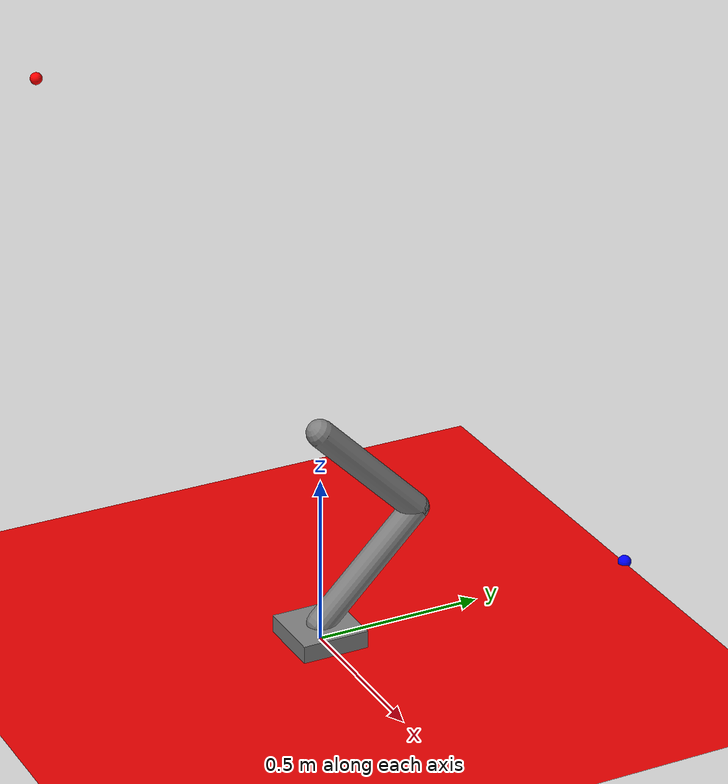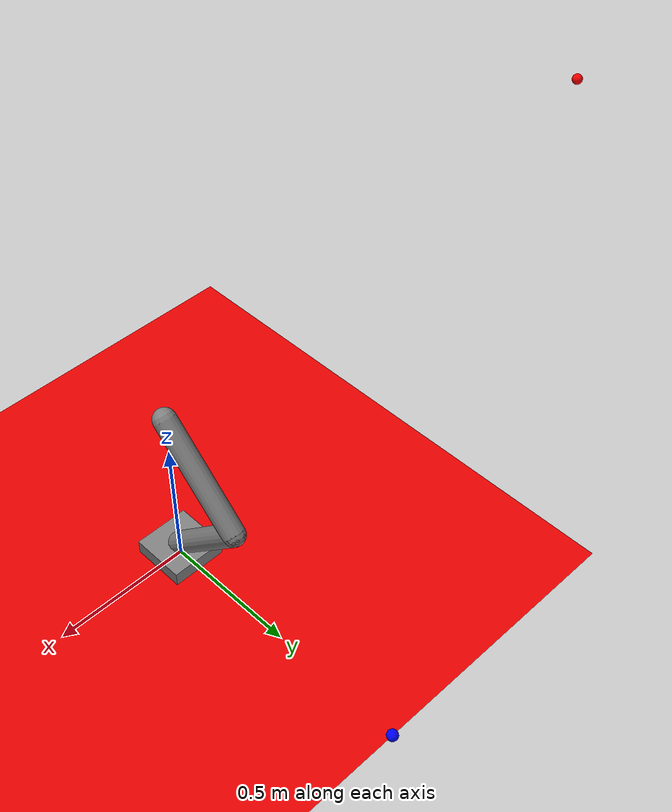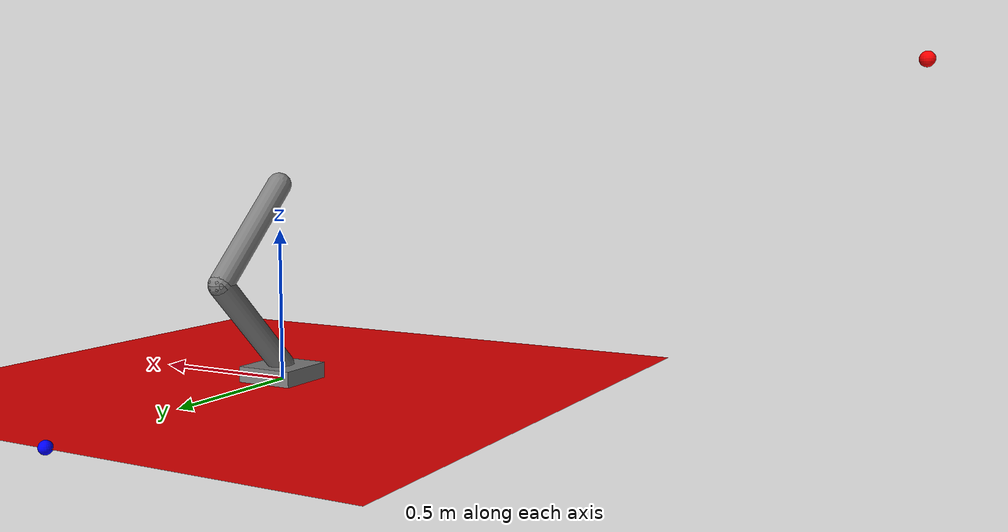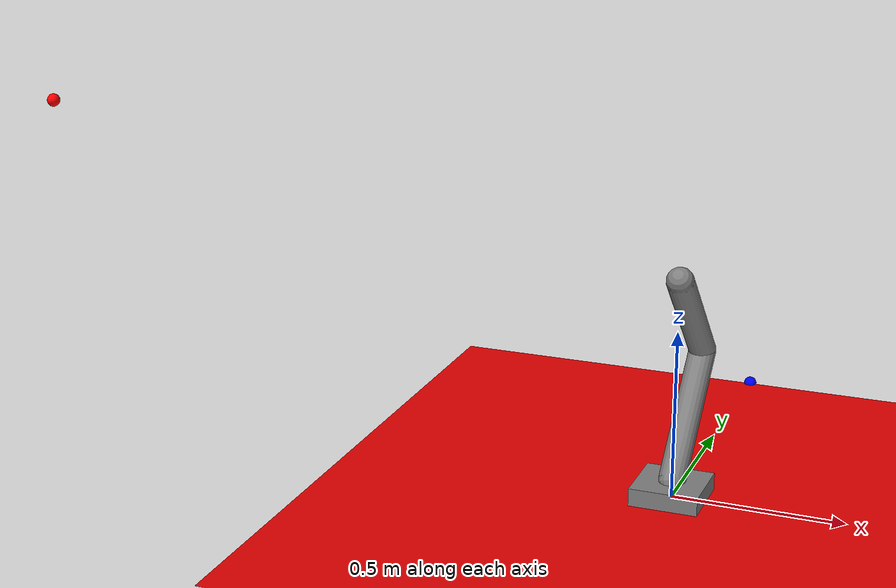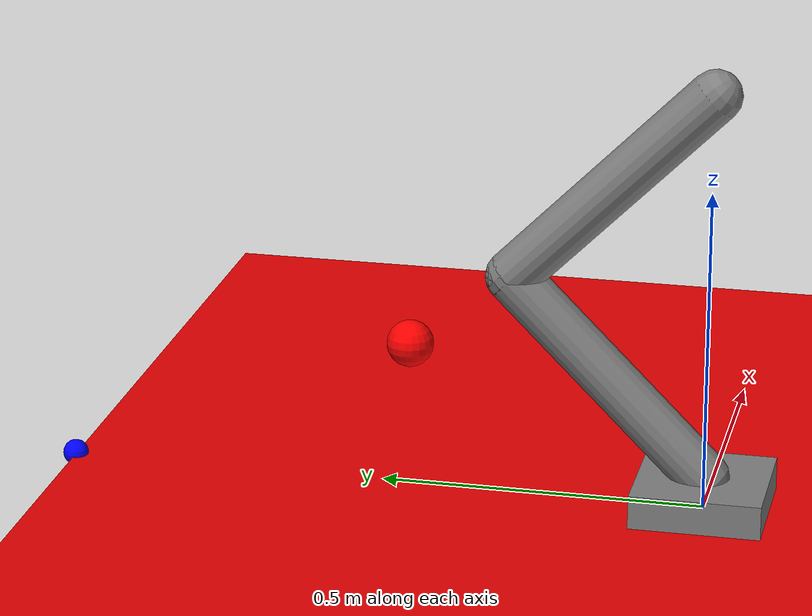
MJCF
<mujoco>
  <compiler angle="radian"/>
  <option gravity="0 0 -9.81"/>
  <worldbody>
    <light diffuse=".5 .5 .5" pos="0 0 3" dir="0 0 -1"/>
    <geom type="plane" size="1 1 0.1" rgba=".9 0 0 1"/>
    <body name="base" pos="0 0 0">
      <geom type="box" size="0.1 0.1 0.05"/>
      <body name="upperArm" pos="0 0 0.05">
        <joint name="shoulder" type="hinge" axis="0 1 1" pos="0 0 0"/>
        <geom type="capsule" fromto="0 0 0 0 0.3 0.3" size="0.04"/>
        <body name="lowerArm" pos="0 0.3 0.3">
          <joint name="elbow" type="hinge" axis="0 1 1" pos="0 0 0"/>
          <geom type="capsule" fromto="0 0 0 0 -0.3 0.3" size="0.04"/>
          <site name="endEffector" pos="0 -0.3 0.3" size="0.01" rgba="0 1 0 1"/>
        </body>
      </body>
    </body>
    <site name="startPos" pos="0 1 0" size="0.02" rgba="0 0 1 1"/>
    <site name="goalPos" pos="-2 0 1" size="0.02" rgba="1 0 0 1"/>
  </worldbody>
  <actuator>
    <motor name="shoulderMotor" joint="shoulder" ctrlrange="-10 10"/>
    <motor name="elbowMotor" joint="elbow" ctrlrange="-10 10"/>
  </actuator>
</mujoco>
